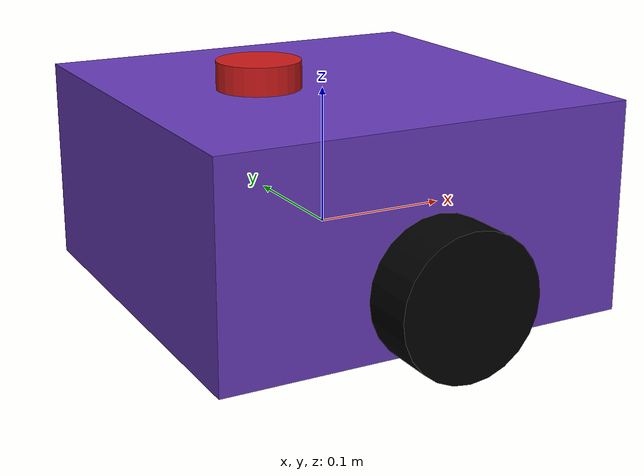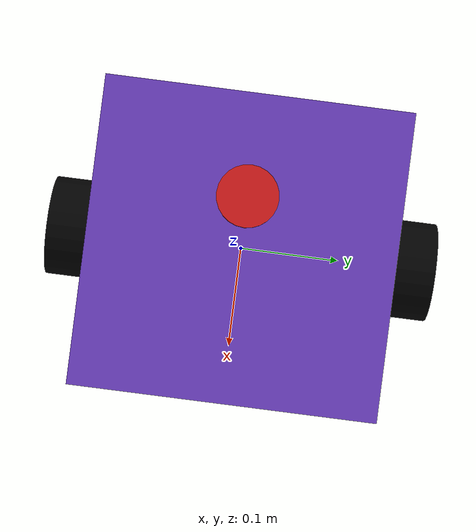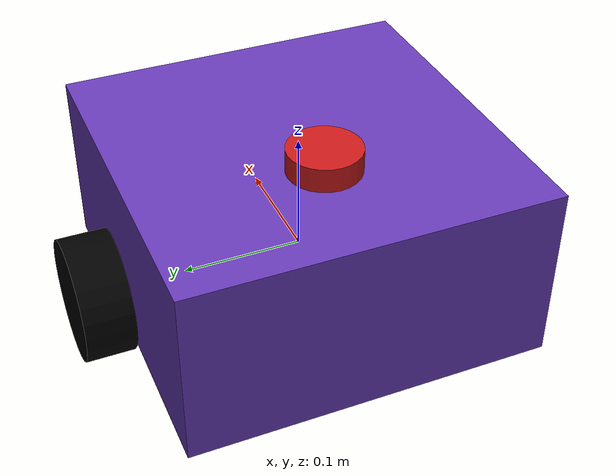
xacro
<?xml version="1.0"?>
<robot name="my_amr" xmlns:xacro="http://www.ros.org/wiki/xacro">

  <!-- Base link (root) -->
  <link name="base_link"/>

  <!-- Chassis -->
  <joint name="chassis_joint" type="fixed">
    <parent link="base_link"/>
    <child link="chassis"/>
    <origin xyz="-0.15 0 0"/>
  </joint>

  <link name="chassis">
    <visual>
      <origin xyz="0.15 0 0.03"/>
      <geometry><box size="0.3 0.3 0.15"/></geometry>
      <material name="purple"><color rgba="0.4 0.23 0.72 1"/></material>
    </visual>
    <collision>
      <origin xyz="0.15 0 0.03"/>
      <geometry><box size="0.3 0.3 0.15"/></geometry>
    </collision>
    <inertial>
      <origin xyz="0.15 0 0.03"/>
      <mass value="0.5"/>
      <inertia ixx="0.0046875" ixy="0" ixz="0" iyy="0.0046875" iyz="0" izz="0.0075"/>
    </inertial>
  </link>

  <!-- Left wheel -->
  <joint name="left_wheel_joint" type="continuous">
    <parent link="base_link"/>
    <child link="left_wheel"/>
    <origin xyz="0 0.175 0" rpy="-1.5708 0 0"/>
    <axis xyz="0 0 1"/>
<dynamics damping="0.1" friction="0.01"/>
  </joint>

  <link name="left_wheel">
    <visual>
      <geometry><cylinder radius="0.05" length="0.04"/></geometry>
      <material name="black"><color rgba="0 0 0 1"/></material>
    </visual>
    <collision>
      <geometry><cylinder radius="0.05" length="0.04"/></geometry>
    </collision>
    <inertial>
      <mass value="0.1"/>
      <inertia ixx="0.0000766" ixy="0" ixz="0" iyy="0.0000766" iyz="0" izz="0.000125"/>
    </inertial>
  </link>

  <!-- Right wheel -->
  <joint name="right_wheel_joint" type="continuous">
    <parent link="base_link"/>
    <child link="right_wheel"/>
    <origin xyz="0 -0.175 0" rpy="1.5708 0 0"/>
    <axis xyz="0 0 -1"/>
<dynamics damping="0.1" friction="0.01"/>
  </joint>

  <link name="right_wheel">
    <visual>
      <geometry><cylinder radius="0.05" length="0.04"/></geometry>
      <material name="black"><color rgba="0 0 0 1"/></material>
    </visual>
    <collision>
      <geometry><cylinder radius="0.05" length="0.04"/></geometry>
    </collision>
    <inertial>
      <mass value="0.1"/>
      <inertia ixx="0.0000766" ixy="0" ixz="0" iyy="0.0000766" iyz="0" izz="0.000125"/>
    </inertial>
  </link>

  <!-- Caster -->
  <joint name="caster_joint" type="fixed">
    <parent link="chassis"/>
    <child link="caster"/>
    <origin xyz="0.24 0 0"/>
</joint>

<link name="caster">
    <visual>
        <geometry><sphere radius="0.05"/></geometry>
        <material name="grey"><color rgba="0.5 0.5 0.5 1"/></material>
    </visual>
    <collision>
        <geometry><sphere radius="0.05"/></geometry>
    </collision>
    <inertial>
        <mass value="0.1"/>
        <inertia ixx="0.0001" ixy="0" ixz="0"
                 iyy="0.0001" iyz="0"
                 izz="0.0001"/>
    </inertial>
</link>
  <!-- Lidar mount -->
  <joint name="laser_joint" type="fixed">
    <parent link="chassis"/>
    <child link="laser_frame"/>
    <origin xyz="0.1 0 0.105"/>
  </joint>

  <link name="laser_frame">
    <visual>
      <geometry><cylinder radius="0.03" length="0.04"/></geometry>
      <material name="red"><color rgba="0.8 0.1 0.1 1"/></material>
    </visual>
    <collision>
      <geometry><cylinder radius="0.03" length="0.04"/></geometry>
    </collision>
    <inertial>
      <mass value="0.1"/>
      <inertia ixx="0.0001" ixy="0" ixz="0" iyy="0.0001" iyz="0" izz="0.0001"/>
    </inertial>
  </link>

  <!-- Gazebo friction -->
  <gazebo reference="left_wheel">
    <mu1>1.0</mu1>
    <mu2>1.0</mu2>
  </gazebo>
  <gazebo reference="right_wheel">
    <mu1>1.0</mu1>
    <mu2>1.0</mu2>
  </gazebo>
  <gazebo reference="caster">
    <mu1>0.05</mu1>
    <mu2>0.05</mu2>
  </gazebo>

  <!-- Diff drive plugin -->
  <gazebo>
    <plugin filename="gz-sim-diff-drive-system"
            name="gz::sim::systems::DiffDrive">
      <left_joint>left_wheel_joint</left_joint>
      <right_joint>right_wheel_joint</right_joint>
      <wheel_separation>0.35</wheel_separation>
      <wheel_radius>0.05</wheel_radius>
      <odom_publish_frequency>50</odom_publish_frequency>
      <topic>cmd_vel</topic>
      <odom_topic>odom</odom_topic>
      <tf_topic>tf</tf_topic>
      <frame_id>odom</frame_id>
      <child_frame_id>base_link</child_frame_id>
      <max_linear_acceleration>0.5</max_linear_acceleration>
    </plugin>

    <plugin filename="gz-sim-joint-state-publisher-system"
            name="gz::sim::systems::JointStatePublisher">
      <topic>joint_states</topic>
    </plugin>
  </gazebo>

  <!-- Lidar sensor -->
  <gazebo reference="laser_frame">
    <sensor name="laser" type="gpu_lidar">
      <always_on>true</always_on>
      <visualize>false</visualize>
      <update_rate>10</update_rate>
      <topic>scan</topic>
      <gz_frame_id>laser_frame</gz_frame_id>
      <lidar>
        <scan>
          <horizontal>
            <samples>360</samples>
            <resolution>1</resolution>
            <min_angle>-3.14</min_angle>
            <max_angle>3.14</max_angle>
          </horizontal>
        </scan>
        <range>
          <min>0.12</min>
          <max>10.0</max>
          <resolution>0.01</resolution>
        </range>
      </lidar>
    </sensor>
  </gazebo>

</robot>
